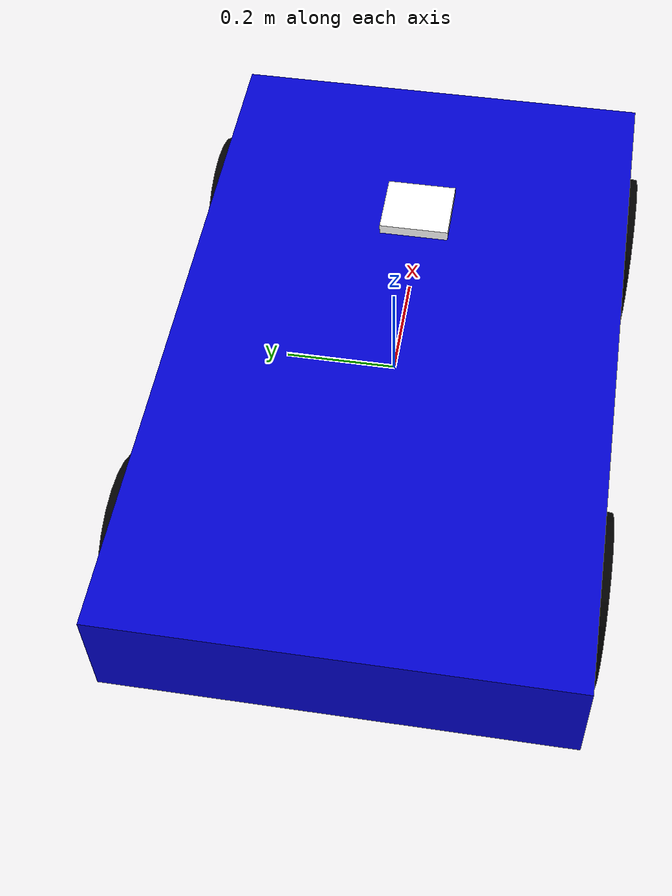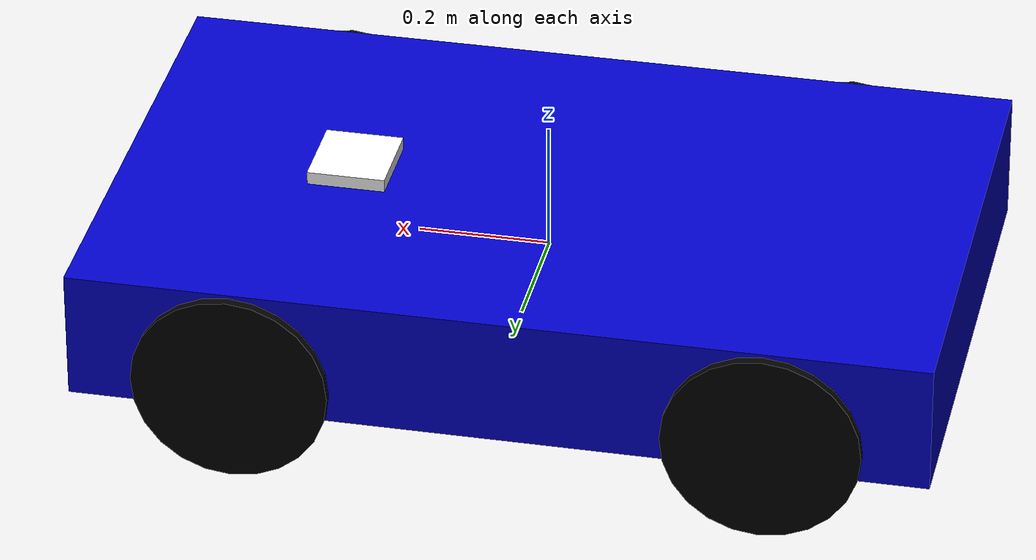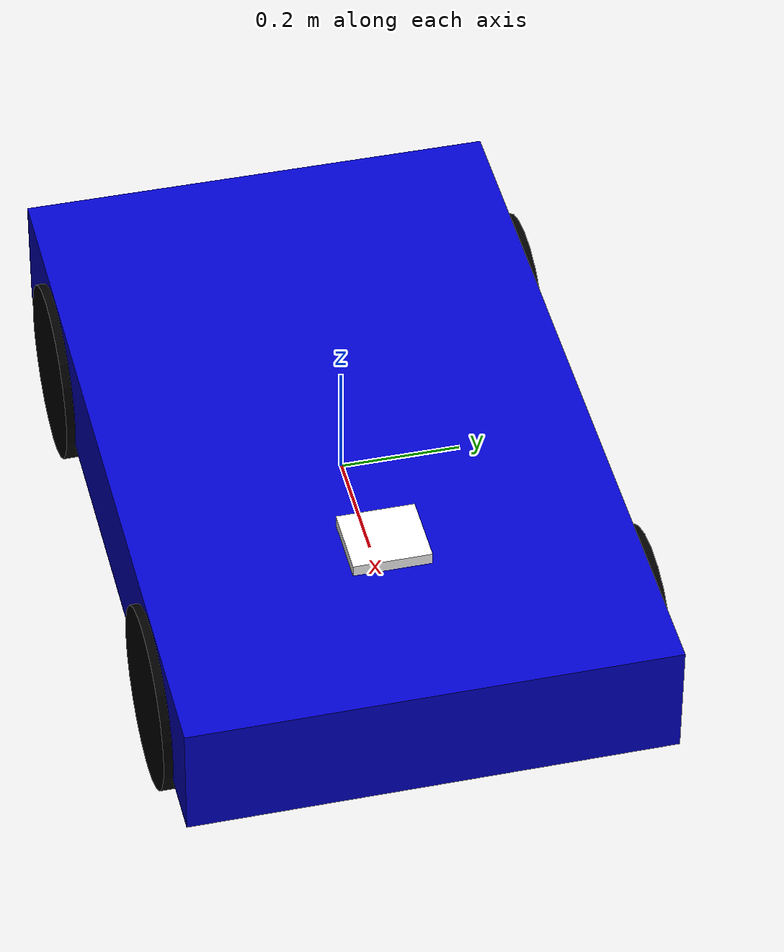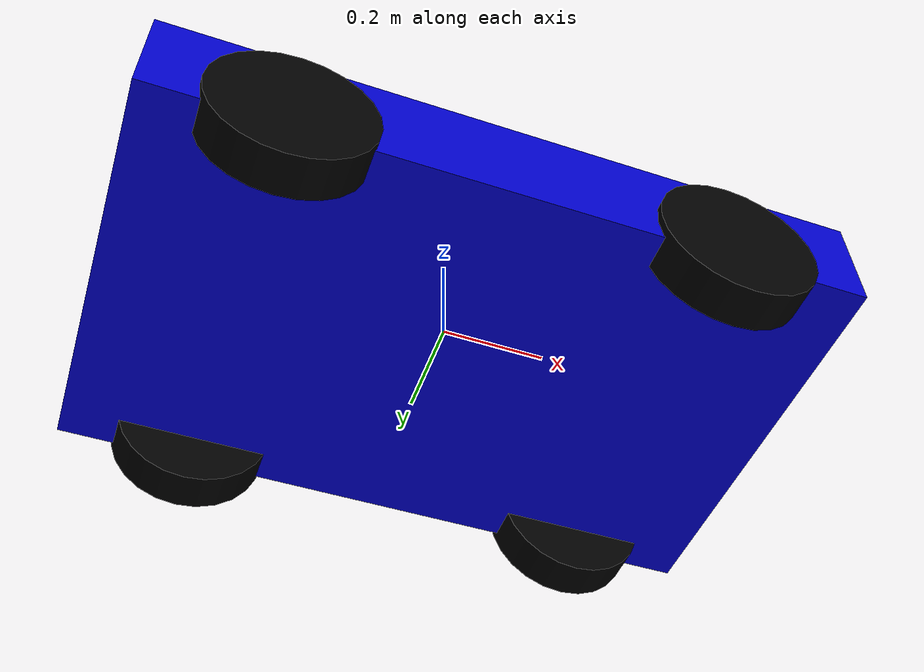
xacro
<?xml version="1.0"?>
<robot name="robot" xmlns:xacro="http://www.ros.org/wiki/xacro">
<xacro:property name="M_PI"        value="3.14159"/>
<xacro:property name="base_length" value="1.3"/>
<xacro:property name="base_width"  value="0.8"/>
<xacro:property name="base_height" value="0.2"/>

<xacro:property name="wheel_length" value="0.08"/>
<xacro:property name="wheel_radius" value="0.15"/>

<xacro:property name="wheel_x_offset"    value="0.4"/>
<xacro:property name="wheel_y_offset"    value="0.375"/>
<xacro:property name="wheel_z_offset"    value="-0.055"/>

<material name="yellow">
	<color rgba="1 0.4 0 1"/>
</material>
<material name="black">
	<color rgba="0 0 0 0.9"/>
</material>
<material name="gray">
	<color rgba="0.75 0.75 0.75 1"/>
</material>
<material name="white">
	<color rgba="1 1 1 1"/>
</material>
<material name="blue">
        <color rgba="0 0 .8 1"/>
</material>

<link name="head">
<visual>
    <origin xyz="0 0 0" rpy="0 0 0"/>
    <geometry>
	<box size=".12 .13 .04"/>
    </geometry>
    <material name="white"/>
</visual>
</link>

<joint name="tobox"  type="fixed">
<origin xyz="0.3 0 0.1" rpy="0 0 0"/>
<parent link="base_link"/>
<child  link="head"/>
</joint>

<link name="base_link">
<visual>
<geometry>
  <box size="${base_length} ${base_width} ${base_height}"/>
</geometry>
<origin rpy="0 0 0" xyz="0 0 0"/>
<material name="blue"/>
</visual>
</link>

<xacro:macro name="steer_wheel" params="prefix reflect">

    <link name="${prefix}_front_wheel">
    	<visual>
	    <origin xyz="0 0 0" rpy="${M_PI/2} 0 0"/>
	    <geometry>
		<cylinder length="${wheel_length}" radius="${wheel_radius}"/>
	    </geometry>
	    <material name="black"/>
        </visual>
    </link>

    <joint name="${prefix}_front_steer_joint"  type="revolute">
	<origin xyz="${wheel_x_offset} ${reflect*wheel_y_offset} ${wheel_z_offset}" rpy="0 0 0"/>
	<limit effort ="1000.0" lower="-1" upper="1" velocity="0.5"/>
	<parent link="base_link"/>
	<child  link="${prefix}_front_wheel"/>
	<axis   xyz="0 1 0"/>
    </joint>
</xacro:macro>

<xacro:macro name="drive_wheel" params="prefix reflect">

    <link name="${prefix}_rear_wheel">
    	<visual>
	    <origin xyz="0 0 0" rpy="${M_PI/2} 0 0"/>
	    <geometry>
		<cylinder length="${wheel_length}" radius="${wheel_radius}"/>
	    </geometry>
	    <material name="black"/>
        </visual>
    </link>

    <joint name="${prefix}_rear_drive_joint"  type="revolute">
	<origin xyz="${-1*wheel_x_offset} ${reflect*wheel_y_offset} ${wheel_z_offset}" rpy="0 0 0"/>
	<limit effort ="1000.0" lower="-1" upper="1" velocity="0.5"/>
	<parent link="base_link"/>
	<child  link="${prefix}_rear_wheel"/>
	<axis   xyz="0 1 0"/>
    </joint>
</xacro:macro>

<steer_wheel prefix="left"  reflect="1"/>
<steer_wheel prefix="right" reflect="-1"/>
<drive_wheel prefix="left"  reflect="1"/>
<drive_wheel prefix="right" reflect="-1"/>

</robot>
